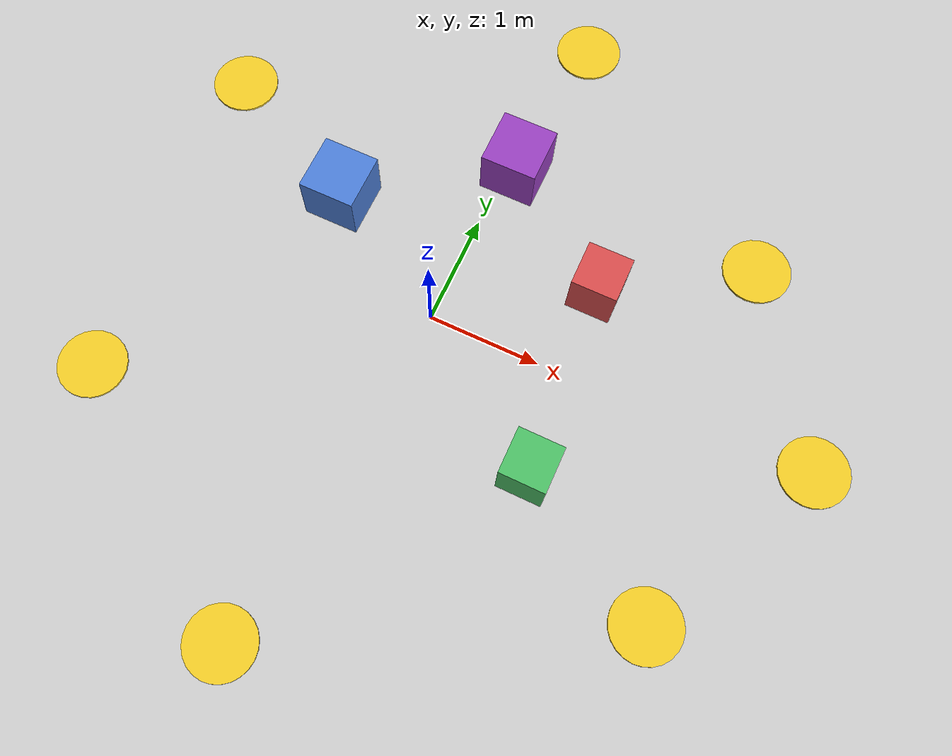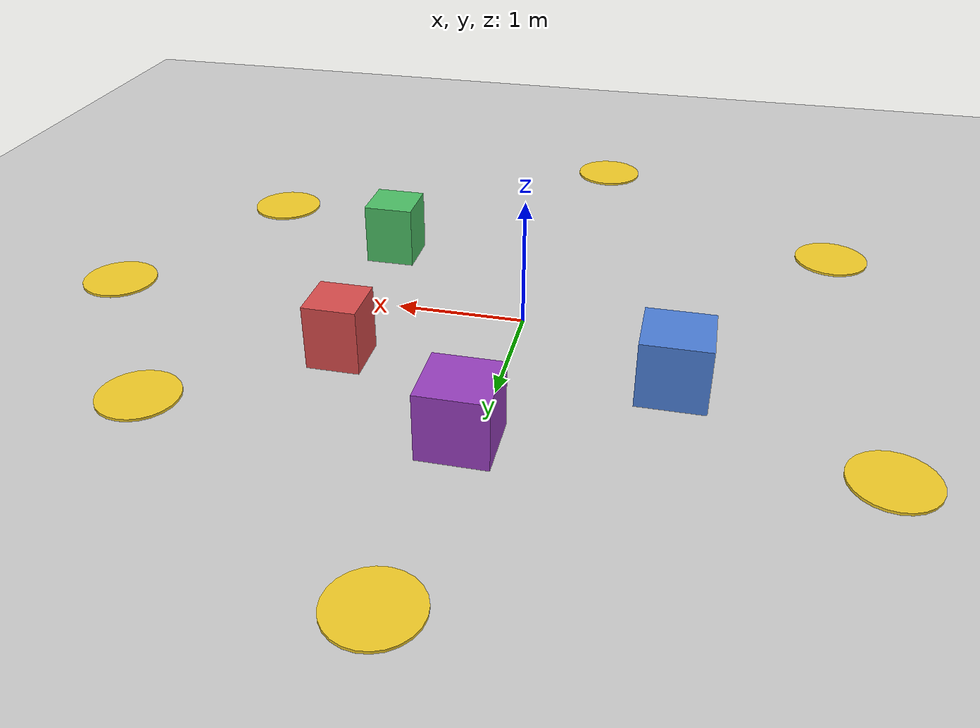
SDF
<?xml version="1.0"?>
<sdf version="1.6">
  <world name="dart_cubes">

    <include><uri>model://ground_plane</uri></include>
    <include><uri>model://sun</uri></include>

    <physics type="ode">
      <max_step_size>0.001</max_step_size>
      <real_time_factor>1</real_time_factor>
      <real_time_update_rate>1000</real_time_update_rate>
    </physics>

    <scene>
      <ambient>0.4 0.4 0.4 1</ambient>
      <background>0.7 0.7 0.7 1</background>
      <shadows>false</shadows>
    </scene>

    <!-- ===== cube obstacles (sparse, on paths the robot is likely to take) ===== -->
    <model name="cube_a">              <!-- red  -->
      <static>true</static>
      <pose>1.2 0.8 0.25 0 0 0</pose>
      <link name="link">
        <collision name="c"><geometry><box><size>0.4 0.4 0.5</size></box></geometry></collision>
        <visual name="v"><geometry><box><size>0.4 0.4 0.5</size></box></geometry>
          <material><ambient>0.85 0.3 0.3 1</ambient><diffuse>0.85 0.3 0.3 1</diffuse></material></visual>
      </link>
    </model>

    <model name="cube_b">              <!-- blue -->
      <static>true</static>
      <pose>-1.2 0.7 0.25 0 0 0</pose>
      <link name="link">
        <collision name="c"><geometry><box><size>0.5 0.5 0.5</size></box></geometry></collision>
        <visual name="v"><geometry><box><size>0.5 0.5 0.5</size></box></geometry>
          <material><ambient>0.3 0.5 0.85 1</ambient><diffuse>0.3 0.5 0.85 1</diffuse></material></visual>
      </link>
    </model>

    <model name="cube_c">              <!-- green -->
      <static>true</static>
      <pose>1.3 -0.9 0.25 0 0 0</pose>
      <link name="link">
        <collision name="c"><geometry><box><size>0.4 0.4 0.5</size></box></geometry></collision>
        <visual name="v"><geometry><box><size>0.4 0.4 0.5</size></box></geometry>
          <material><ambient>0.3 0.75 0.4 1</ambient><diffuse>0.3 0.75 0.4 1</diffuse></material></visual>
      </link>
    </model>

    <model name="cube_d">              <!-- purple -->
      <static>true</static>
      <pose>0.1 1.6 0.25 0 0 0</pose>
      <link name="link">
        <collision name="c"><geometry><box><size>0.5 0.5 0.5</size></box></geometry></collision>
        <visual name="v"><geometry><box><size>0.5 0.5 0.5</size></box></geometry>
          <material><ambient>0.6 0.25 0.75 1</ambient><diffuse>0.6 0.25 0.75 1</diffuse></material></visual>
      </link>
    </model>

    <!-- ===== delivery-point markers (visual only, no collision) ===== -->
    <!-- gold disk at each t1..t7 position; radius 0.30, 0.02 thick, on the ground -->
    <model name="pad_t1"><static>true</static><pose>2.4 1.6 0.01 0 0 0</pose><link name="link">
      <visual name="v"><geometry><cylinder><radius>0.30</radius><length>0.02</length></cylinder></geometry>
        <material><ambient>0.95 0.80 0.15 1</ambient><diffuse>0.95 0.80 0.15 1</diffuse></material></visual></link></model>

    <model name="pad_t2"><static>true</static><pose>-2.6 1.4 0.01 0 0 0</pose><link name="link">
      <visual name="v"><geometry><cylinder><radius>0.30</radius><length>0.02</length></cylinder></geometry>
        <material><ambient>0.95 0.80 0.15 1</ambient><diffuse>0.95 0.80 0.15 1</diffuse></material></visual></link></model>

    <model name="pad_t3"><static>true</static><pose>2.6 -1.6 0.01 0 0 0</pose><link name="link">
      <visual name="v"><geometry><cylinder><radius>0.30</radius><length>0.02</length></cylinder></geometry>
        <material><ambient>0.95 0.80 0.15 1</ambient><diffuse>0.95 0.80 0.15 1</diffuse></material></visual></link></model>

    <model name="pad_t4"><static>true</static><pose>-2.4 -1.6 0.01 0 0 0</pose><link name="link">
      <visual name="v"><geometry><cylinder><radius>0.30</radius><length>0.02</length></cylinder></geometry>
        <material><ambient>0.95 0.80 0.15 1</ambient><diffuse>0.95 0.80 0.15 1</diffuse></material></visual></link></model>

    <model name="pad_t5"><static>true</static><pose>0.2 3.1 0.01 0 0 0</pose><link name="link">
      <visual name="v"><geometry><cylinder><radius>0.30</radius><length>0.02</length></cylinder></geometry>
        <material><ambient>0.95 0.80 0.15 1</ambient><diffuse>0.95 0.80 0.15 1</diffuse></material></visual></link></model>

    <model name="pad_t6"><static>true</static><pose>-0.3 -3.1 0.01 0 0 0</pose><link name="link">
      <visual name="v"><geometry><cylinder><radius>0.30</radius><length>0.02</length></cylinder></geometry>
        <material><ambient>0.95 0.80 0.15 1</ambient><diffuse>0.95 0.80 0.15 1</diffuse></material></visual></link></model>

    <model name="pad_t7"><static>true</static><pose>3.4 0.1 0.01 0 0 0</pose><link name="link">
      <visual name="v"><geometry><cylinder><radius>0.30</radius><length>0.02</length></cylinder></geometry>
        <material><ambient>0.95 0.80 0.15 1</ambient><diffuse>0.95 0.80 0.15 1</diffuse></material></visual></link></model>

  </world>
</sdf>
